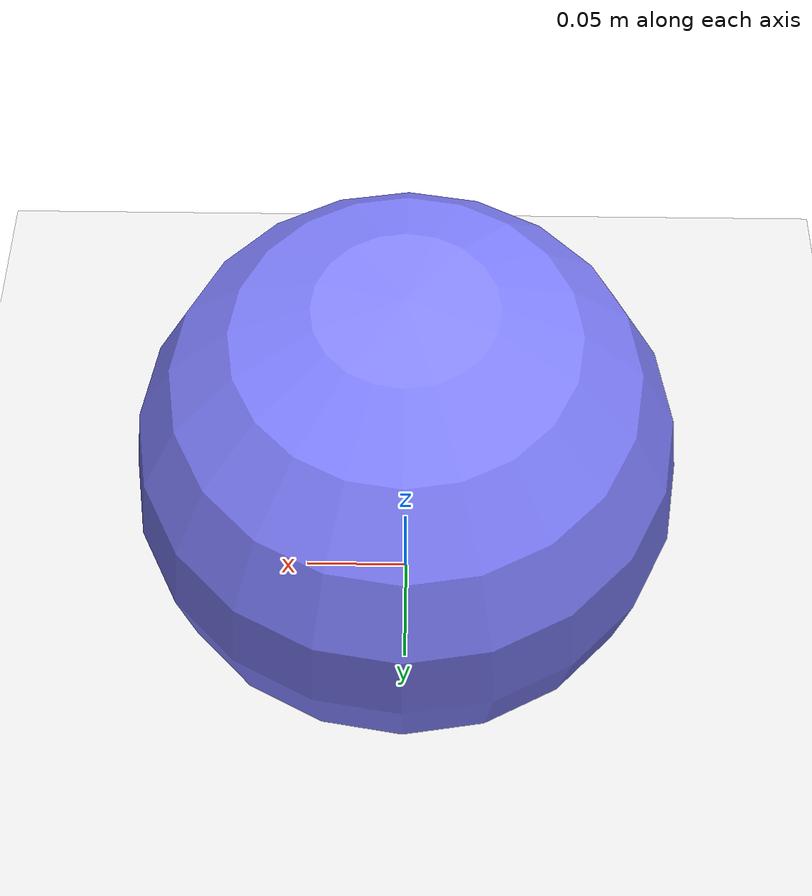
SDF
<sdf version="1.6">
  <world name="ballbot_world">
    <physics name="1ms" type="ode">
      <max_step_size>0.001</max_step_size>
      <real_time_factor>1.0</real_time_factor>
    </physics>
    <plugin
      filename="gz-sim-physics-system"
      name="gz::sim::systems::Physics">
    </plugin>
    <plugin
      filename="gz-sim-user-commands-system"
      name="gz::sim::systems::UserCommands">
    </plugin>
    <plugin
      filename="gz-sim-scene-broadcaster-system"
      name="gz::sim::systems::SceneBroadcaster">
    </plugin>
    <plugin
      filename="gz-sim-sensors-system"
      name="gz::sim::systems::Sensors">
      <render_engine>ogre2</render_engine>
    </plugin>
    <plugin
      filename="gz-sim-contact-system"
      name="gz::sim::systems::Contact">
    </plugin>

    <!-- Ground Plane -->
    <model name='ground_plane'>
      <static>true</static>
      <link name='link'>
        <collision name='collision'>
          <pose>0 0 0 0 0 0</pose>
          <geometry>
            <plane>
              <normal>0 0 1</normal>
              <size>100 100</size>
            </plane>
          </geometry>
        </collision>
        <visual name='visual'>
          <pose>0 0 0 0 0 0</pose>
          <geometry>
            <plane>
              <normal>0 0 1</normal>
              <size>100 100</size>
            </plane>
          </geometry>
          <material>
            <ambient>0.8 0.8 0.8 1</ambient>
            <diffuse>0.8 0.8 0.8 1</diffuse>
          </material>
        </visual>
      </link>
    </model>

    <!-- Sphere Model -->
    <model name='balancing_sphere'>
      <pose>0 0 0.1 0 0 0</pose>
      <link name='sphere_link'>
        <inertial>
          <mass>0.620</mass>
          <inertia>
            <ixx>0.007636</ixx>
            <ixy>0</ixy>
            <ixz>0</ixz>
            <iyy>0.007636</iyy>
            <iyz>0</iyz>
            <izz>0.007636</izz>
          </inertia>
          <pose>0 0 0 0 0 0</pose>
        </inertial>
        <collision name='sphere_collision'>
          <pose>0 0 0 0 0 0</pose>
          <geometry>
            <sphere>
              <radius>0.121</radius>
            </sphere>
          </geometry>
        </collision>
        <visual name='sphere_visual'>
          <pose>0 0 0 0 0 0</pose>
          <geometry>
            <sphere>
              <radius>0.121</radius>
            </sphere>
          </geometry>
          <material>
            <ambient>0.3 0.3 0.8 1</ambient>
            <diffuse>0.5 0.5 1 1</diffuse>
            <specular>1 1 1 1</specular>
          </material>
        </visual>
      </link>
    </model>

    <!-- Robot Include -->
    <!-- Add your robot model here -->

    <!-- Lighting -->
    <light type="directional" name="sun">
      <cast_shadows>true</cast_shadows>
      <pose>0 0 10 0 0 0</pose>
      <diffuse>0.8 0.8 0.8 1</diffuse>
      <specular>0.2 0.2 0.2 1</specular>
      <attenuation>
        <range>1000</range>
        <constant>0.9</constant>
        <linear>0.01</linear>
        <quadratic>0.001</quadratic>
      </attenuation>
      <direction>-0.5 0.1 -0.9</direction>
    </light>
  </world>
</sdf>
